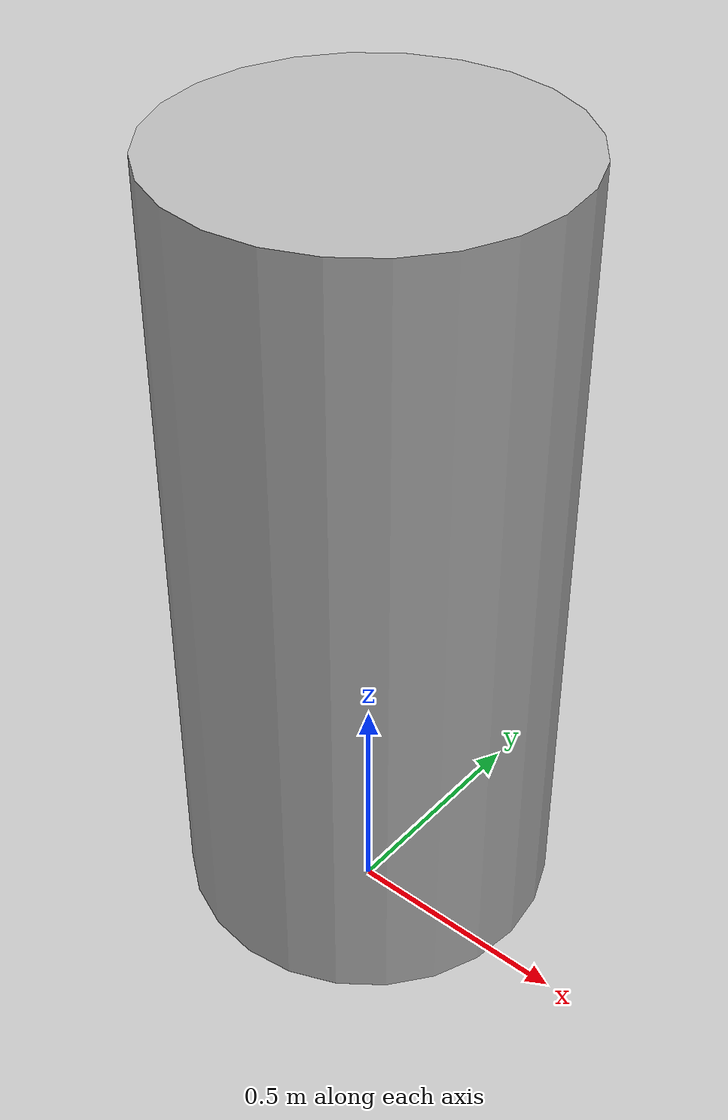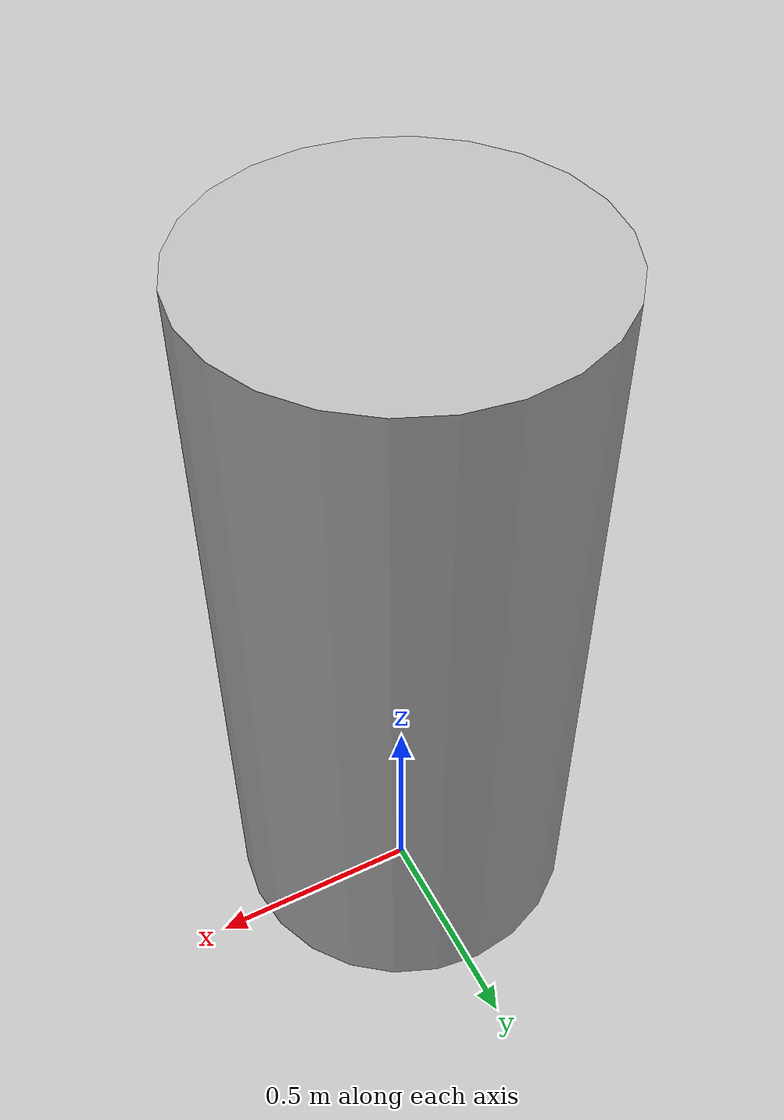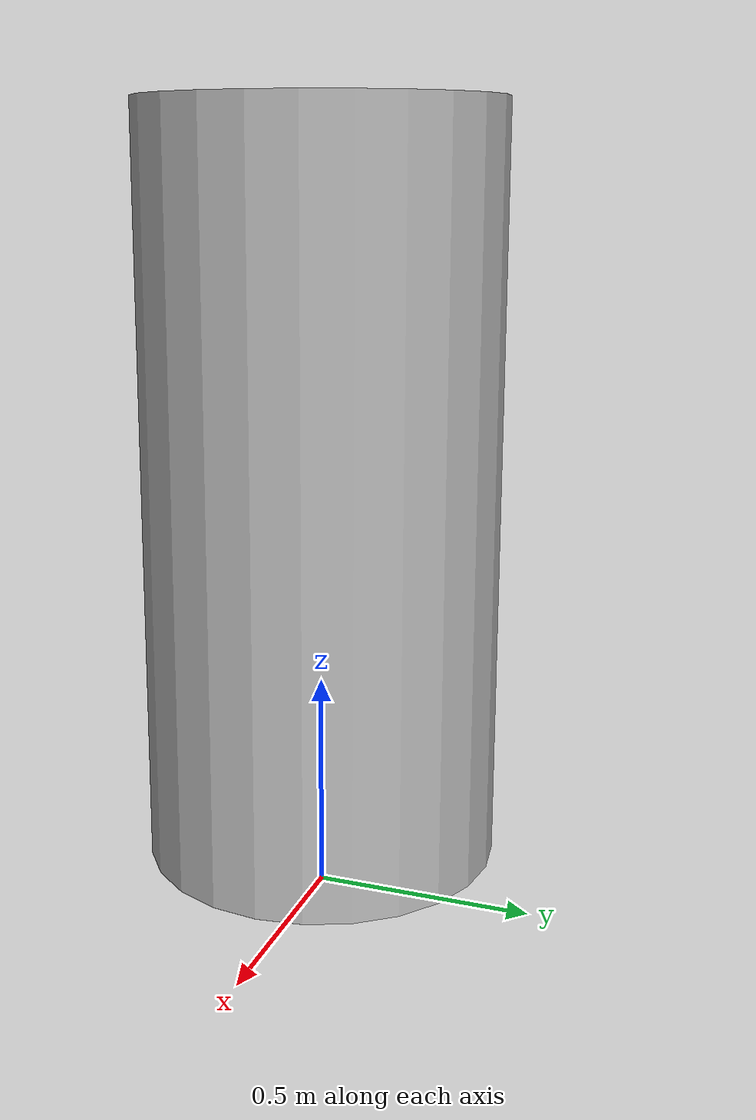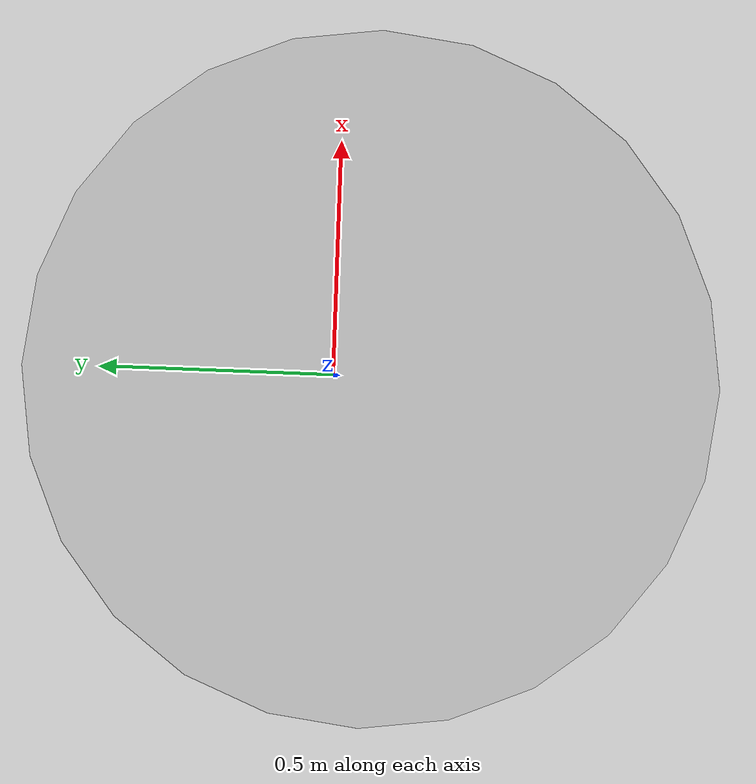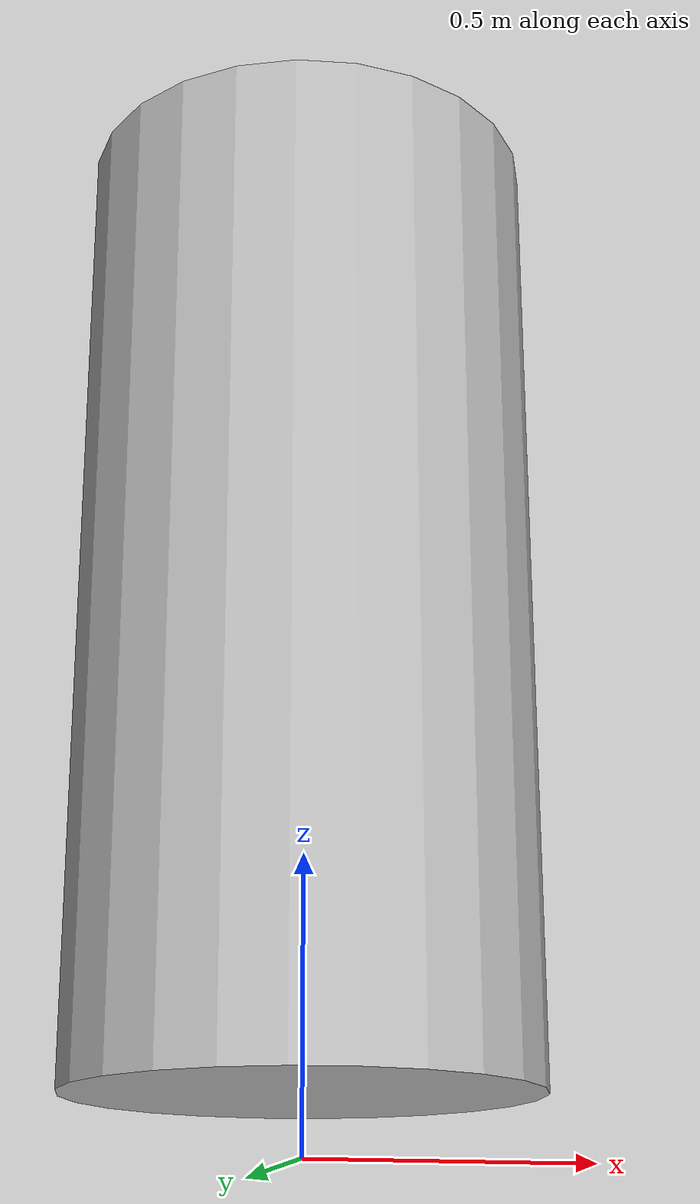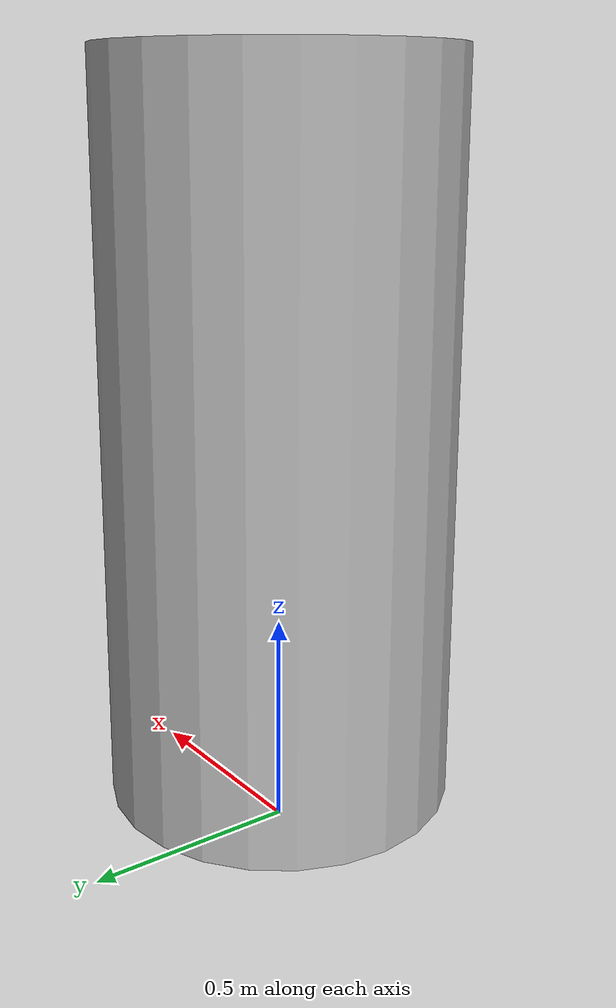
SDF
<?xml version='1.0'?>
<sdf version="1.4">
<model name="my_human">

<pose>0 0 0.95 0 0 0</pose>
<link name="link">
    <collision name="collision">
        <geometry>
            <cylinder>
                <radius>0.4</radius>
                <length>1.7</length>
            </cylinder>
        </geometry>
    </collision>

    <visual name="visual">
        <geometry>
            <cylinder>
                <radius>0.4</radius>
                <length>1.7</length>
            </cylinder>
        </geometry>
    </visual>
    <gravity>false</gravity>
</link>

</model>
</sdf>
